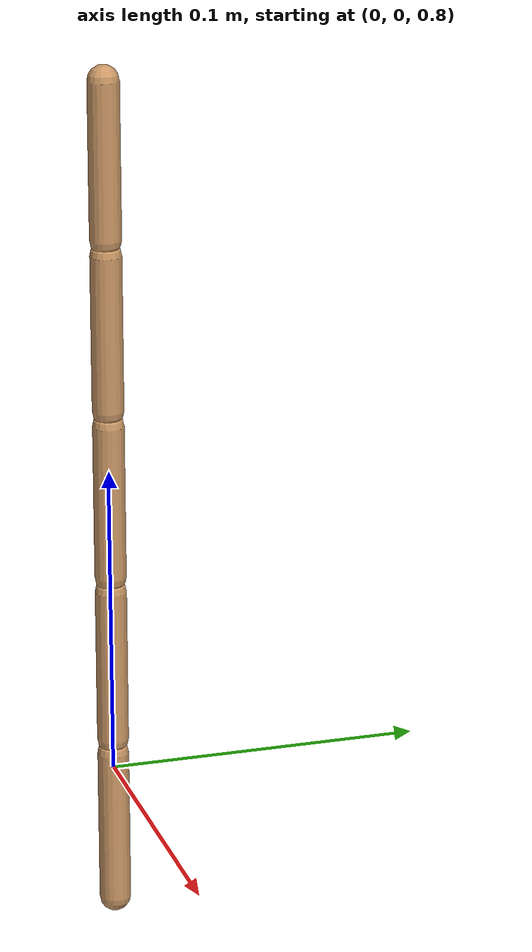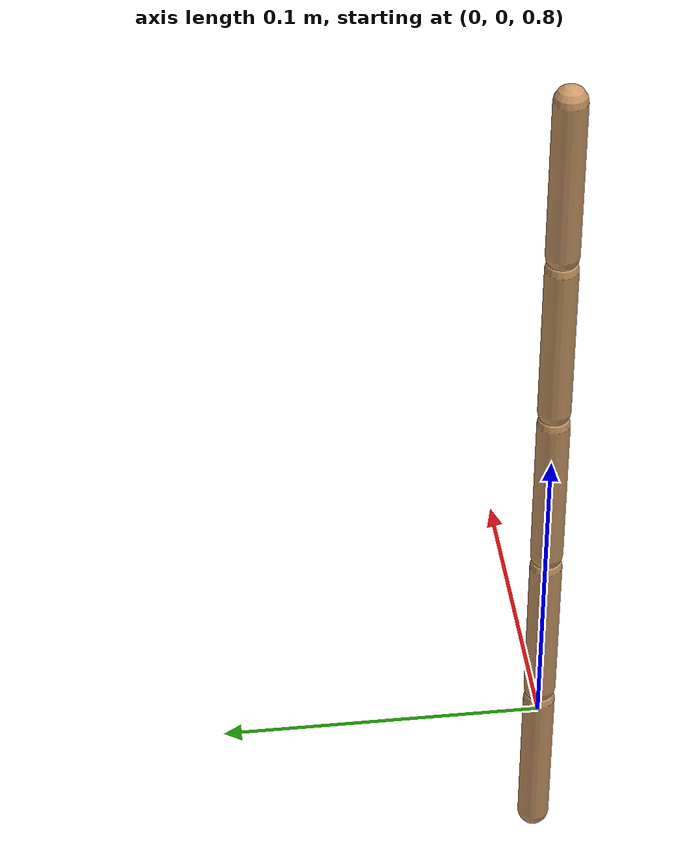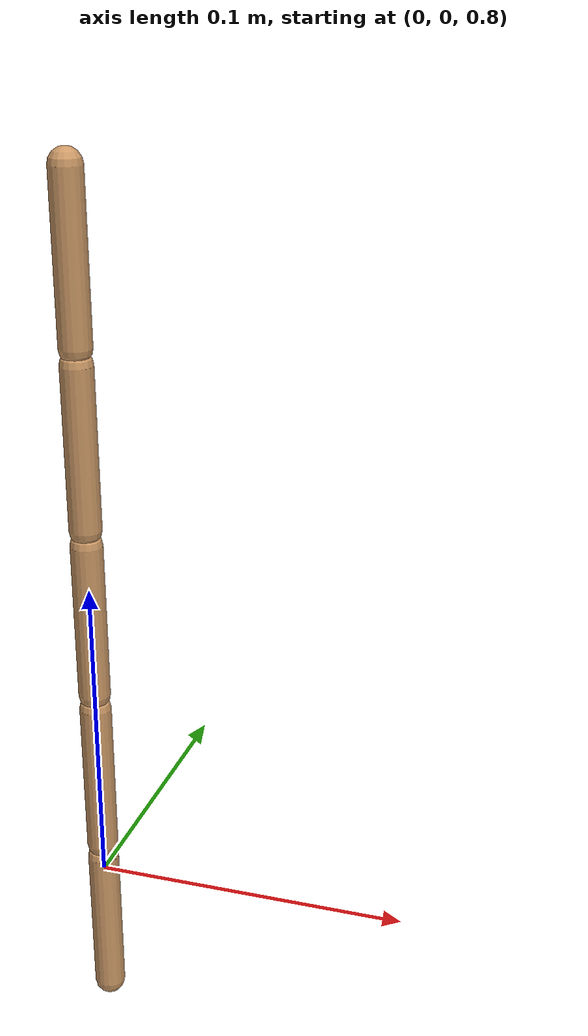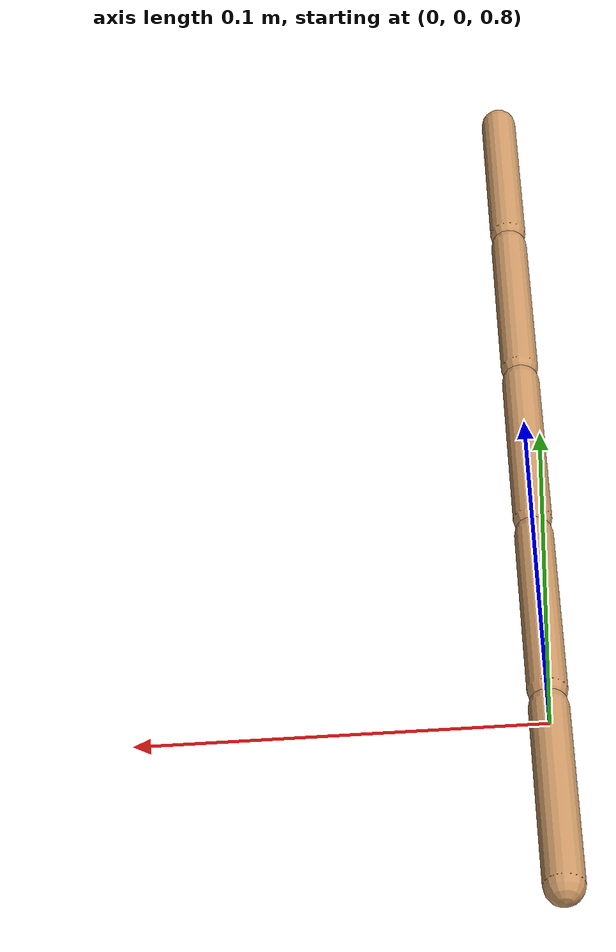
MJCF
<mujoco model="cable_5seg_no_weld">
    <worldbody>
        <body name="B0" pos="0 0 1.0">
            <freejoint/>
            <geom type="capsule" size="0.005 0.025" mass="0.001" rgba="0.8 0.6 0.4 1"/>
            <body name="B1" pos="0 0 -0.055">
                <joint type="ball" damping="0.01" armature="0.001"/>
                <geom type="capsule" size="0.005 0.025" mass="0.001" rgba="0.8 0.6 0.4 1"/>
                <body name="B2" pos="0 0 -0.055">
                    <joint type="ball" damping="0.01" armature="0.001"/>
                    <geom type="capsule" size="0.005 0.025" mass="0.001" rgba="0.8 0.6 0.4 1"/>
                    <body name="B3" pos="0 0 -0.055">
                        <joint type="ball" damping="0.01" armature="0.001"/>
                        <geom type="capsule" size="0.005 0.025" mass="0.001" rgba="0.8 0.6 0.4 1"/>
                        <body name="B4" pos="0 0 -0.055">
                            <joint type="ball" damping="0.01" armature="0.001"/>
                            <geom type="capsule" size="0.005 0.025" mass="0.001" rgba="0.8 0.6 0.4 1"/>
                        </body>
                    </body>
                </body>
            </body>
        </body>
    </worldbody>
</mujoco>
